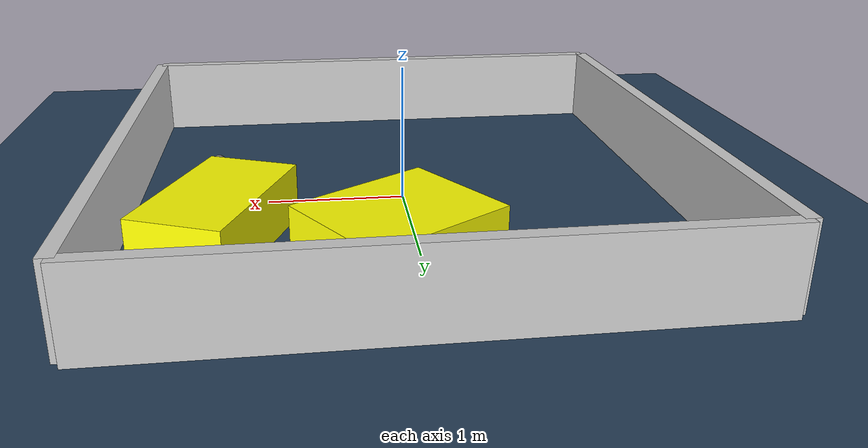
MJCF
<?xml version="1.0" ?>
<mujoco model="generated_environment">
  <option timestep="0.01" integrator="RK4" cone="elliptic"/>
  <default>
    <geom density="1"/>
  </default>
  <asset>
    <texture builtin="gradient" height="3072" rgb1="0.3 0.5 0.7" rgb2="0 0 0" type="skybox" width="512"/>
    <texture builtin="checker" height="300" mark="edge" markrgb="0.8 0.8 0.8" name="groundplane" rgb1="0.2 0.3 0.4" rgb2="0.1 0.2 0.3" type="2d" width="300"/>
    <material name="groundplane" reflectance="0.2" texrepeat="5 5" texture="groundplane" texuniform="true"/>
    <material name="robot" rgba="0.0 1.0 0.0 1"/>
  </asset>
  <worldbody>
    <light dir="0 0 -1" directional="true" pos="0 0 1.5"/>
    <geom condim="4" friction="1.0 0.005 0.001" material="groundplane" name="floor" size="0 0 0.05" type="plane"/>
    <body name="walls">
      <geom name="wall_1" condim="4" pos="-2.0 0.0 0.3" rgba="0.800000011920929 0.800000011920929 0.800000011920929 1.0" size="0.05 2.0 0.3" type="box"/>
      <geom name="wall_2" condim="4" pos="2.0 0.0 0.3" rgba="0.800000011920929 0.800000011920929 0.800000011920929 1.0" size="0.05 2.0 0.3" type="box"/>
      <geom name="wall_3" condim="4" pos="0.0 -2.0 0.3" rgba="0.800000011920929 0.800000011920929 0.800000011920929 1.0" size="2.0 0.05 0.3" type="box"/>
      <geom name="wall_4" condim="4" pos="0.0 2.0 0.3" rgba="0.800000011920929 0.800000011920929 0.800000011920929 1.0" size="2.0 0.05 0.3" type="box"/>
    </body>
    <body name="robot">
      <joint name="joint_x" type="slide" pos="0 0 0" axis="1 0 0"/>
      <joint name="joint_y" type="slide" pos="0 0 0" axis="0 1 0"/>
      <geom name="robot" type="sphere" pos="1.3833454729881929 -0.39979505557933126 0.2" size="0.05" mass="5." friction="1.0 0.005 0.0001" condim="4"/>
      <site name="sensor_ball"/>
    </body>
    <body name="obstacle_1_movable">
      <geom name="obstacle_1_movable" condim="4" pos="1.3058645491918497 0.6929318743647863 0.2" euler="0 0 157.63334795445812" friction="1.0 0.005 0.001" rgba="1 1 0 1" size="0.3265235336054919 0.5759665547752697 0.2" type="box" mass="0.1"/>
      <joint type="free"/>
    </body>
    <body name="obstacle_2_movable">
      <geom name="obstacle_2_movable" condim="4" pos="0.1522979859074194 1.0942647434220205 0.2" euler="0 0 32.627736941596424" friction="1.0 0.005 0.001" rgba="1 1 0 1" size="0.5306406502169254 0.4363264319149766 0.2" type="box" mass="0.1"/>
      <joint type="free"/>
    </body>
  </worldbody>
  <actuator>
    <motor name="actuator_x" joint="joint_x" gear="1" ctrlrange="-1 1"/>
    <motor name="actuator_y" joint="joint_y" gear="1" ctrlrange="-1 1"/>
  </actuator>
</mujoco>
